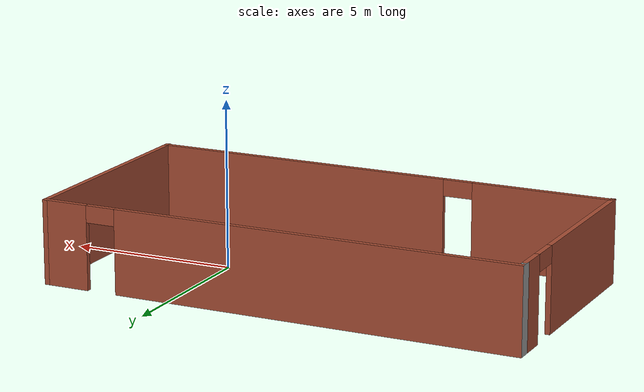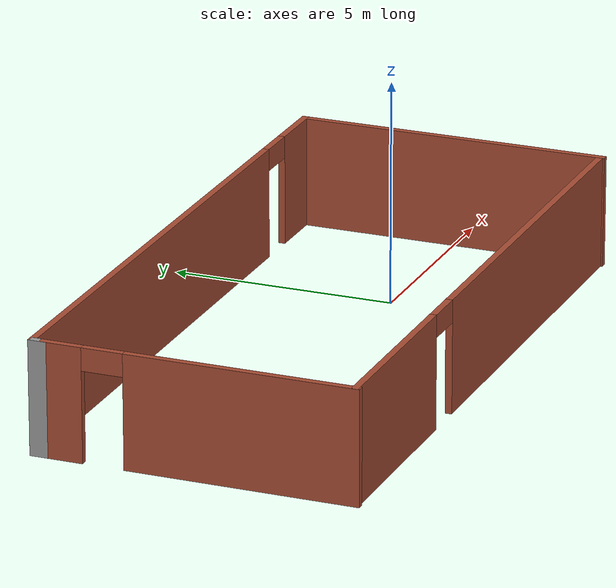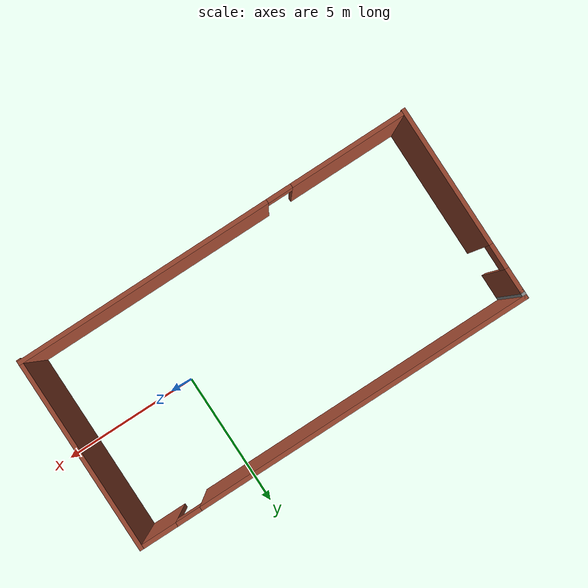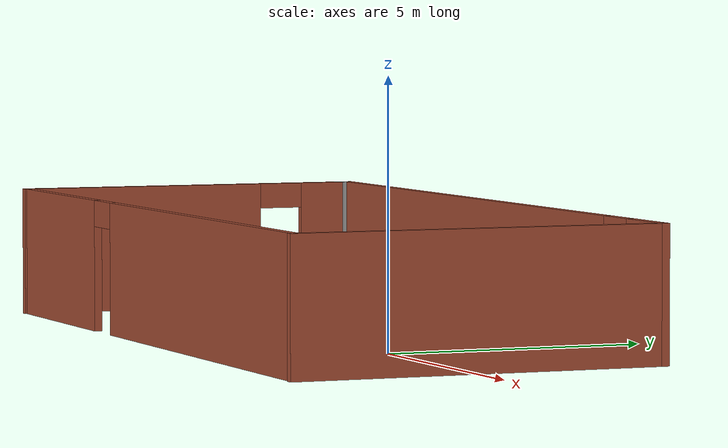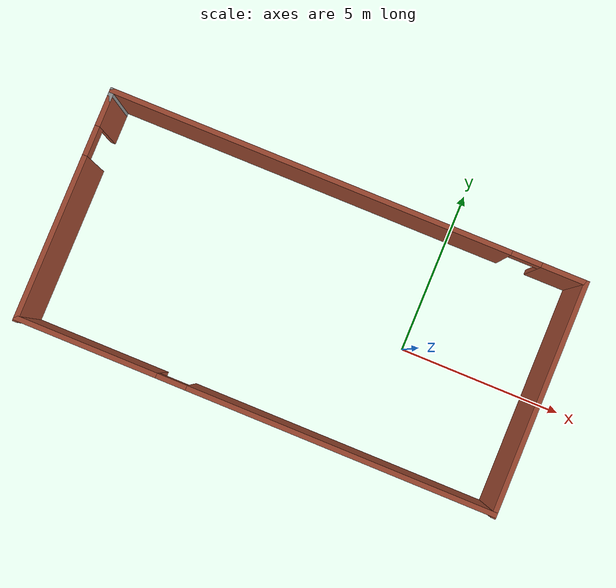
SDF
<?xml version='1.0'?>
<sdf version='1.7'>
  <model name='demo.world'>
    <pose>-3.2965 0.087963 0 0 -0 0</pose>
    <link name='Wall_5'>
      <pose>-7.175 -0.125 0 0 -0 -1.5708</pose>
      <visual name='Wall_5_Visual_0'>
        <pose>-2.97193 0 1.25 0 -0 0</pose>
        <geometry>
          <box>
            <size>0.911686 0.15 2.5</size>
          </box>
        </geometry>
        <material>
          <script>
            <uri>file://media/materials/scripts/gazebo.material</uri>
            <name>Gazebo/Bricks</name>
          </script>
          <ambient>1 1 1 1</ambient>
        </material>
        <meta>
          <layer>0</layer>
        </meta>
      </visual>
      <collision name='Wall_5_Collision_0'>
        <geometry>
          <box>
            <size>0.911686 0.15 2.5</size>
          </box>
        </geometry>
        <pose>-2.97193 0 1.25 0 -0 0</pose>
      </collision>
      <visual name='Wall_5_Visual_1'>
        <pose>0.905843 0 1.25 0 -0 0</pose>
        <geometry>
          <box>
            <size>5.04385 0.15 2.5</size>
          </box>
        </geometry>
        <material>
          <script>
            <uri>file://media/materials/scripts/gazebo.material</uri>
            <name>Gazebo/Bricks</name>
          </script>
          <ambient>1 1 1 1</ambient>
        </material>
        <meta>
          <layer>0</layer>
        </meta>
      </visual>
      <collision name='Wall_5_Collision_1'>
        <geometry>
          <box>
            <size>5.04385 0.15 2.5</size>
          </box>
        </geometry>
        <pose>0.905843 0 1.25 0 -0 0</pose>
      </collision>
      <visual name='Wall_5_Visual_2'>
        <pose>-2.06608 0 2.25 0 -0 0</pose>
        <geometry>
          <box>
            <size>0.9 0.15 0.5</size>
          </box>
        </geometry>
        <material>
          <script>
            <uri>file://media/materials/scripts/gazebo.material</uri>
            <name>Gazebo/Bricks</name>
          </script>
          <ambient>1 1 1 1</ambient>
        </material>
        <meta>
          <layer>0</layer>
        </meta>
      </visual>
      <collision name='Wall_5_Collision_2'>
        <geometry>
          <box>
            <size>0.9 0.15 0.5</size>
          </box>
        </geometry>
        <pose>-2.06608 0 2.25 0 -0 0</pose>
      </collision>
    </link>
    <link name='Wall_6'>
      <pose>0 -3.44259 0 0 -0 0</pose>
      <visual name='Wall_6_Visual_0'>
        <pose>-5.09811 0 1.25 0 -0 0</pose>
        <geometry>
          <box>
            <size>4.30378 0.15 2.5</size>
          </box>
        </geometry>
        <material>
          <script>
            <uri>file://media/materials/scripts/gazebo.material</uri>
            <name>Gazebo/Bricks</name>
          </script>
          <ambient>1 1 1 1</ambient>
        </material>
        <meta>
          <layer>0</layer>
        </meta>
      </visual>
      <collision name='Wall_6_Collision_0'>
        <geometry>
          <box>
            <size>4.30378 0.15 2.5</size>
          </box>
        </geometry>
        <pose>-5.09811 0 1.25 0 -0 0</pose>
      </collision>
      <visual name='Wall_6_Visual_1'>
        <pose>2.60189 0 1.25 0 -0 0</pose>
        <geometry>
          <box>
            <size>9.29622 0.15 2.5</size>
          </box>
        </geometry>
        <material>
          <script>
            <uri>file://media/materials/scripts/gazebo.material</uri>
            <name>Gazebo/Bricks</name>
          </script>
          <ambient>1 1 1 1</ambient>
        </material>
        <meta>
          <layer>0</layer>
        </meta>
      </visual>
      <collision name='Wall_6_Collision_1'>
        <geometry>
          <box>
            <size>9.29622 0.15 2.5</size>
          </box>
        </geometry>
        <pose>2.60189 0 1.25 0 -0 0</pose>
      </collision>
      <visual name='Wall_6_Visual_2'>
        <pose>-2.49622 0 2.25 0 -0 0</pose>
        <geometry>
          <box>
            <size>0.9 0.15 0.5</size>
          </box>
        </geometry>
        <material>
          <script>
            <uri>file://media/materials/scripts/gazebo.material</uri>
            <name>Gazebo/Bricks</name>
          </script>
          <ambient>1 1 1 1</ambient>
        </material>
        <meta>
          <layer>0</layer>
        </meta>
      </visual>
      <collision name='Wall_6_Collision_2'>
        <geometry>
          <box>
            <size>0.9 0.15 0.5</size>
          </box>
        </geometry>
        <pose>-2.49622 0 2.25 0 -0 0</pose>
      </collision>
    </link>
    <link name='Wall_7'>
      <collision name='Wall_7_Collision'>
        <geometry>
          <box>
            <size>7.10554 0.15 2.5</size>
          </box>
        </geometry>
        <pose>0 0 1.25 0 -0 0</pose>
      </collision>
      <visual name='Wall_7_Visual'>
        <pose>0 0 1.25 0 -0 0</pose>
        <geometry>
          <box>
            <size>7.10554 0.15 2.5</size>
          </box>
        </geometry>
        <material>
          <script>
            <uri>file://media/materials/scripts/gazebo.material</uri>
            <name>Gazebo/Bricks</name>
          </script>
          <ambient>1 1 1 1</ambient>
        </material>
        <meta>
          <layer>0</layer>
        </meta>
      </visual>
      <pose>7.175 -0 0 0 -0 1.5708</pose>
    </link>
    <link name='Wall_8'>
      <pose>0 3.47777 0 0 -0 3.14159</pose>
      <visual name='Wall_8_Visual_0'>
        <pose>-6.54191 0 1.25 0 -0 0</pose>
        <geometry>
          <box>
            <size>1.41618 0.15 2.5</size>
          </box>
        </geometry>
        <material>
          <script>
            <uri>file://media/materials/scripts/gazebo.material</uri>
            <name>Gazebo/Bricks</name>
          </script>
          <ambient>1 1 1 1</ambient>
        </material>
        <meta>
          <layer>0</layer>
        </meta>
      </visual>
      <collision name='Wall_8_Collision_0'>
        <geometry>
          <box>
            <size>1.41618 0.15 2.5</size>
          </box>
        </geometry>
        <pose>-6.54191 0 1.25 0 -0 0</pose>
      </collision>
      <visual name='Wall_8_Visual_1'>
        <pose>1.15809 0 1.25 0 -0 0</pose>
        <geometry>
          <box>
            <size>12.1838 0.15 2.5</size>
          </box>
        </geometry>
        <material>
          <script>
            <uri>file://media/materials/scripts/gazebo.material</uri>
            <name>Gazebo/Bricks</name>
          </script>
          <ambient>1 1 1 1</ambient>
        </material>
        <meta>
          <layer>0</layer>
        </meta>
      </visual>
      <collision name='Wall_8_Collision_1'>
        <geometry>
          <box>
            <size>12.1838 0.15 2.5</size>
          </box>
        </geometry>
        <pose>1.15809 0 1.25 0 -0 0</pose>
      </collision>
      <visual name='Wall_8_Visual_2'>
        <pose>-5.38382 0 2.25 0 -0 0</pose>
        <geometry>
          <box>
            <size>0.9 0.15 0.5</size>
          </box>
        </geometry>
        <material>
          <script>
            <uri>file://media/materials/scripts/gazebo.material</uri>
            <name>Gazebo/Bricks</name>
          </script>
          <ambient>1 1 1 1</ambient>
        </material>
        <meta>
          <layer>0</layer>
        </meta>
      </visual>
      <collision name='Wall_8_Collision_2'>
        <geometry>
          <box>
            <size>0.9 0.15 0.5</size>
          </box>
        </geometry>
        <pose>-5.38382 0 2.25 0 -0 0</pose>
      </collision>
    </link>
    <link name='Wall_9'>
      <collision name='Wall_9_Collision'>
        <geometry>
          <box>
            <size>0.4 0.15 2.5</size>
          </box>
        </geometry>
        <pose>0 0 1.25 0 -0 0</pose>
      </collision>
      <visual name='Wall_9_Visual'>
        <pose>0 0 1.25 0 -0 0</pose>
        <geometry>
          <box>
            <size>0.4 0.15 2.5</size>
          </box>
        </geometry>
        <material>
          <script>
            <uri>file://media/materials/scripts/gazebo.material</uri>
            <name>Gazebo/Grey</name>
          </script>
          <ambient>1 1 1 1</ambient>
        </material>
        <meta>
          <layer>0</layer>
        </meta>
      </visual>
      <pose>-7.175 3.35277 0 0 -0 -1.5708</pose>
    </link>
    <static>1</static>
  </model>
</sdf>
